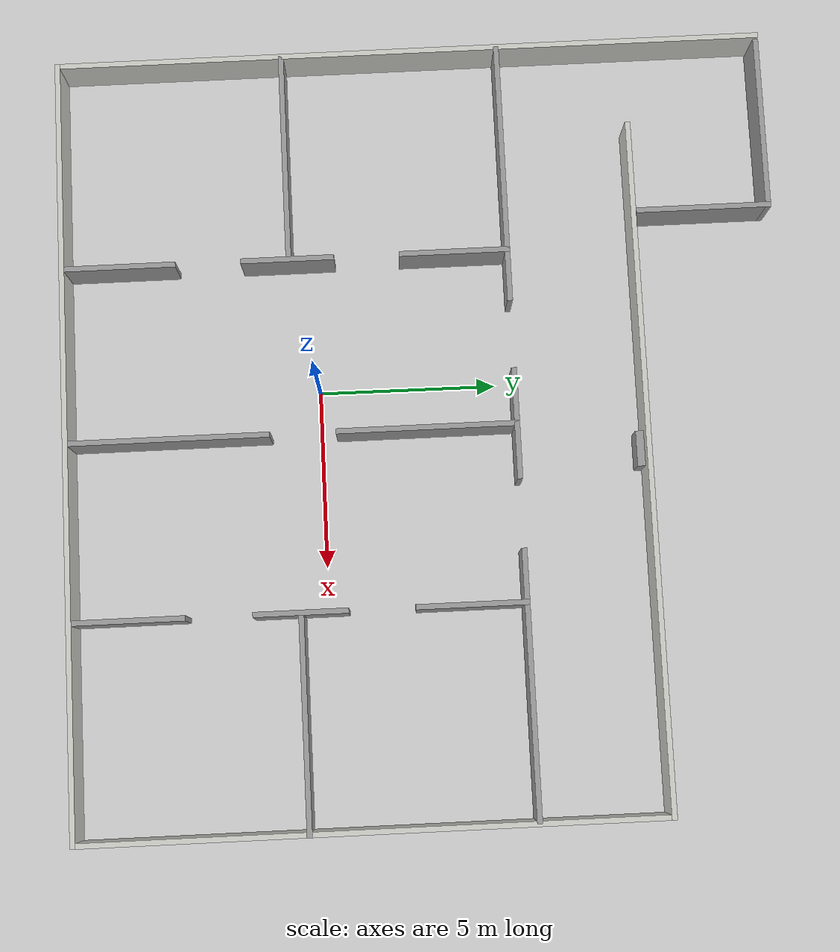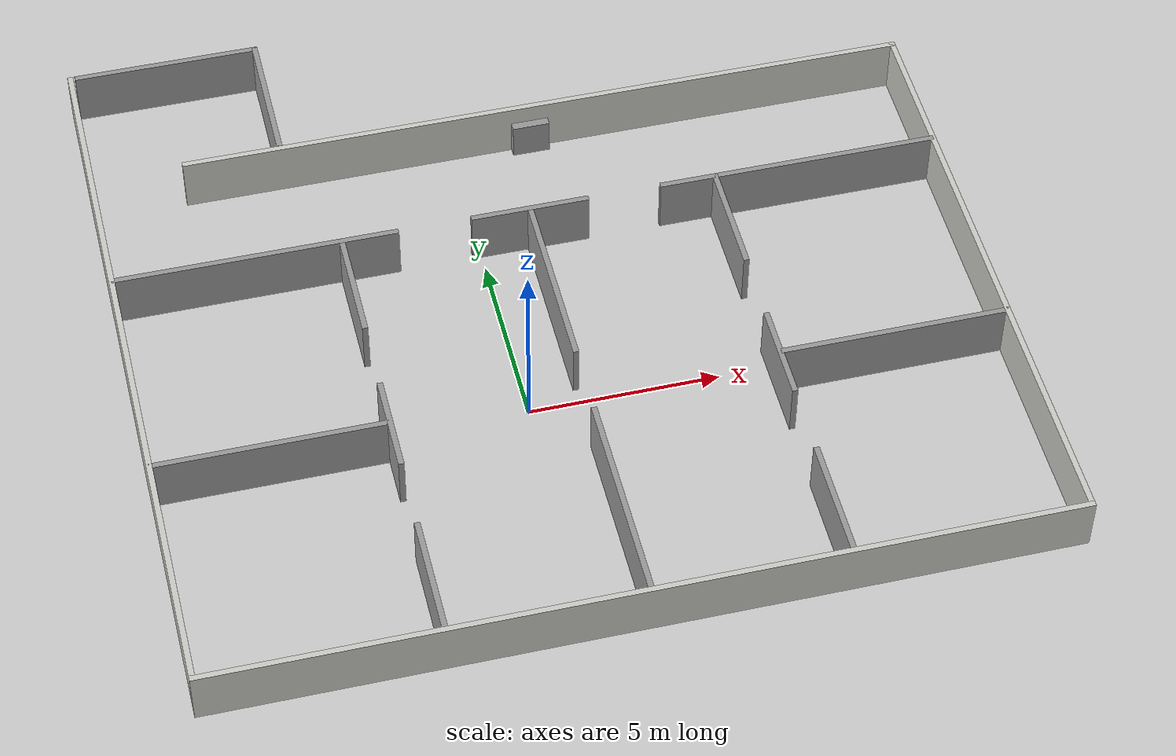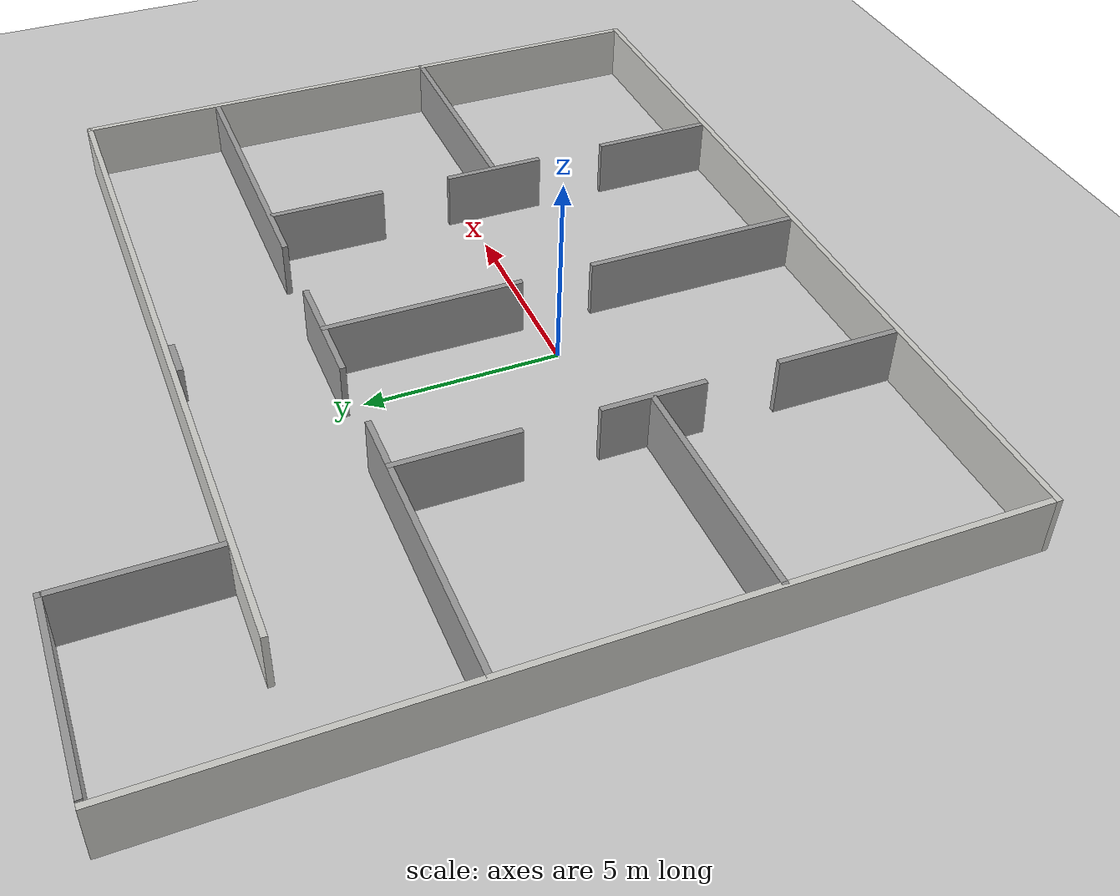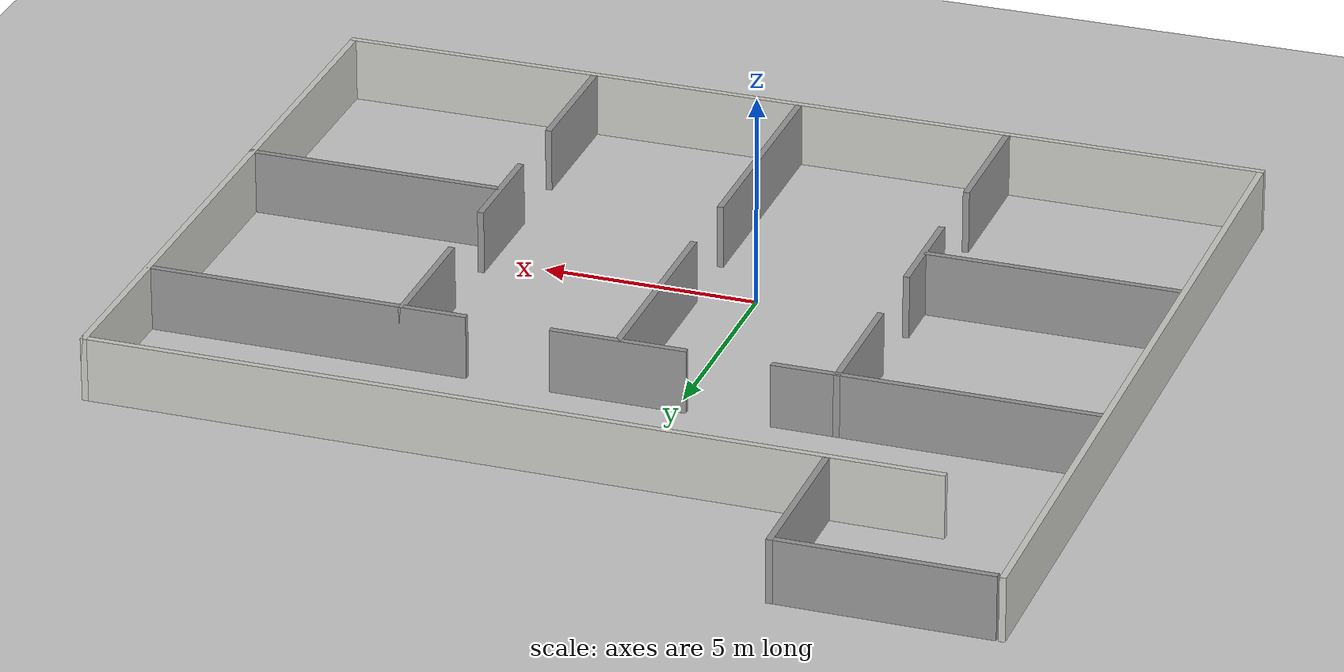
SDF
<sdf version="1.7">
 <world name="default">
  <model name="ground_plane">
   <static>1</static>
   <link name="link">
    <collision name="collision">
     <geometry><plane><normal>0 0 1</normal><size>100 100</size></plane></geometry>
     <surface>
      <contact><collide_bitmask>65535</collide_bitmask></contact>
      <friction><ode><mu>100</mu><mu2>50</mu2></ode></friction>
     </surface>
    </collision>
    <visual name="visual">
     <cast_shadows>0</cast_shadows>
     <geometry><plane><normal>0 0 1</normal><size>100 100</size></plane></geometry>
     <material>
      <script><uri>file://media/materials/scripts/gazebo.material</uri><name>Gazebo/Grey</name></script>
     </material>
    </visual>
   </link>
  </model>
  <model name="Untitled">
   <pose>1.32665 2.93009 0 0 -0 0</pose>
   <link name="Wall_0">
    <collision name="Wall_0_Collision">
     <geometry><box><size>20.15 0.15 1.5</size></box></geometry>
     <pose>0 0 0.75 0 -0 0</pose>
    </collision>
    <visual name="Wall_0_Visual">
     <pose>0 0 0.75 0 -0 0</pose>
     <geometry><box><size>20.15 0.15 1.5</size></box></geometry>
     <material>
      <script><uri>file://media/materials/scripts/gazebo.material</uri><name>Gazebo/CeilingTiled</name></script>
      <ambient>1 1 1 1</ambient>
     </material>
     <meta><layer>0</layer></meta>
    </visual>
    <pose>-11 0.074999 0 0 -0 1.5708</pose>
   </link>
   <link name="Wall_15">
    <collision name="Wall_15_Collision">
     <geometry><box><size>7.5 0.15 1.5</size></box></geometry>
     <pose>0 0 0.75 0 -0 0</pose>
    </collision>
    <visual name="Wall_15_Visual">
     <pose>0 0 0.75 0 -0 0</pose>
     <geometry><box><size>7.5 0.15 1.5</size></box></geometry>
     <material>
      <script><uri>file://media/materials/scripts/gazebo.material</uri><name>Gazebo/Grey</name></script>
      <ambient>1 1 1 1</ambient>
     </material>
     <meta><layer>0</layer></meta>
    </visual>
    <pose>7.259 2.575 0 0 -0 3.14159</pose>
   </link>
   <link name="Wall_18">
    <collision name="Wall_18_Collision">
     <geometry><box><size>3.15 0.15 1.5</size></box></geometry>
     <pose>0 0 0.75 0 -0 0</pose>
    </collision>
    <visual name="Wall_18_Visual">
     <pose>0 0 0.75 0 -0 0</pose>
     <geometry><box><size>3.15 0.15 1.5</size></box></geometry>
     <material>
      <script><uri>file://media/materials/scripts/gazebo.material</uri><name>Gazebo/Grey</name></script>
      <ambient>1 1 1 1</ambient>
     </material>
     <meta><layer>0</layer></meta>
    </visual>
    <pose>0 2.575 0 0 -0 0</pose>
   </link>
   <link name="Wall_2">
    <collision name="Wall_2_Collision">
     <geometry><box><size>16.3 0.15 1.5</size></box></geometry>
     <pose>0 0 0.75 0 -0 0</pose>
    </collision>
    <visual name="Wall_2_Visual">
     <pose>0 0 0.75 0 -0 0</pose>
     <geometry><box><size>16.3 0.15 1.5</size></box></geometry>
     <material>
      <script><uri>file://media/materials/scripts/gazebo.material</uri><name>Gazebo/CeilingTiled</name></script>
      <ambient>1 1 1 1</ambient>
     </material>
     <meta><layer>0</layer></meta>
    </visual>
    <pose>11 -1.85 0 0 -0 1.5708</pose>
   </link>
   <link name="Wall_21">
    <collision name="Wall_21_Collision">
     <geometry><box><size>3.15 0.15 1.5</size></box></geometry>
     <pose>0 0 0.75 0 -0 0</pose>
    </collision>
    <visual name="Wall_21_Visual">
     <pose>0 0 0.75 0 -0 0</pose>
     <geometry><box><size>3.15 0.15 1.5</size></box></geometry>
     <material>
      <script><uri>file://media/materials/scripts/gazebo.material</uri><name>Gazebo/Grey</name></script>
      <ambient>1 1 1 1</ambient>
     </material>
     <meta><layer>0</layer></meta>
    </visual>
    <pose>-5 1.075 0 0 -0 -1.5708</pose>
   </link>
   <link name="Wall_25">
    <collision name="Wall_25_Collision">
     <geometry><box><size>3.15 0.15 1.5</size></box></geometry>
     <pose>0 0 0.75 0 -0 0</pose>
    </collision>
    <visual name="Wall_25_Visual">
     <pose>0 0 0.75 0 -0 0</pose>
     <geometry><box><size>3.15 0.15 1.5</size></box></geometry>
     <material>
      <script><uri>file://media/materials/scripts/gazebo.material</uri><name>Gazebo/Grey</name></script>
      <ambient>1 1 1 1</ambient>
     </material>
     <meta><layer>0</layer></meta>
    </visual>
    <pose>-5 -8.425 0 0 -0 1.5708</pose>
   </link>
   <link name="Wall_27">
    <collision name="Wall_27_Collision">
     <geometry><box><size>2.65 0.15 1.5</size></box></geometry>
     <pose>0 0 0.75 0 -0 0</pose>
    </collision>
    <visual name="Wall_27_Visual">
     <pose>0 0 0.75 0 -0 0</pose>
     <geometry><box><size>2.65 0.15 1.5</size></box></geometry>
     <material>
      <script><uri>file://media/materials/scripts/gazebo.material</uri><name>Gazebo/Grey</name></script>
      <ambient>1 1 1 1</ambient>
     </material>
     <meta><layer>0</layer></meta>
    </visual>
    <pose>-5 -3.675 0 0 -0 -1.5708</pose>
   </link>
   <link name="Wall_29">
    <collision name="Wall_29_Collision">
     <geometry><box><size>6 0.15 1.5</size></box></geometry>
     <pose>0 0 0.75 0 -0 0</pose>
    </collision>
    <visual name="Wall_29_Visual">
     <pose>0 0 0.75 0 -0 0</pose>
     <geometry><box><size>6 0.15 1.5</size></box></geometry>
     <material>
      <script><uri>file://media/materials/scripts/gazebo.material</uri><name>Gazebo/Grey</name></script>
      <ambient>1 1 1 1</ambient>
     </material>
     <meta><layer>0</layer></meta>
    </visual>
    <pose>-8.017 -3.638 0 0 -0 3.14159</pose>
   </link>
   <link name="Wall_31">
    <collision name="Wall_31_Collision">
     <geometry><box><size>5.15 0.15 1.5</size></box></geometry>
     <pose>0 0 0.75 0 -0 0</pose>
    </collision>
    <visual name="Wall_31_Visual">
     <pose>0 0 0.75 0 -0 0</pose>
     <geometry><box><size>5.15 0.15 1.5</size></box></geometry>
     <material>
      <script><uri>file://media/materials/scripts/gazebo.material</uri><name>Gazebo/Grey</name></script>
      <ambient>1 1 1 1</ambient>
     </material>
     <meta><layer>0</layer></meta>
    </visual>
    <pose>0 0.074999 0 0 -0 -1.5708</pose>
   </link>
   <link name="Wall_33">
    <collision name="Wall_33_Collision">
     <geometry><box><size>5.65 0.15 1.5</size></box></geometry>
     <pose>0 0 0.75 0 -0 0</pose>
    </collision>
    <visual name="Wall_33_Visual">
     <pose>0 0 0.75 0 -0 0</pose>
     <geometry><box><size>5.65 0.15 1.5</size></box></geometry>
     <material>
      <script><uri>file://media/materials/scripts/gazebo.material</uri><name>Gazebo/Grey</name></script>
      <ambient>1 1 1 1</ambient>
     </material>
     <meta><layer>0</layer></meta>
    </visual>
    <pose>0 -7.175 0 0 -0 1.5708</pose>
   </link>
   <link name="Wall_35">
    <collision name="Wall_35_Collision">
     <geometry><box><size>3.15 0.15 1.5</size></box></geometry>
     <pose>0 0 0.75 0 -0 0</pose>
    </collision>
    <visual name="Wall_35_Visual">
     <pose>0 0 0.75 0 -0 0</pose>
     <geometry><box><size>3.15 0.15 1.5</size></box></geometry>
     <material>
      <script><uri>file://media/materials/scripts/gazebo.material</uri><name>Gazebo/Grey</name></script>
      <ambient>1 1 1 1</ambient>
     </material>
     <meta><layer>0</layer></meta>
    </visual>
    <pose>5 1.075 0 0 -0 -1.5708</pose>
   </link>
   <link name="Wall_37">
    <collision name="Wall_37_Collision">
     <geometry><box><size>2.65 0.15 1.5</size></box></geometry>
     <pose>0 0 0.75 0 -0 0</pose>
    </collision>
    <visual name="Wall_37_Visual">
     <pose>0 0 0.75 0 -0 0</pose>
     <geometry><box><size>2.65 0.15 1.5</size></box></geometry>
     <material>
      <script><uri>file://media/materials/scripts/gazebo.material</uri><name>Gazebo/Grey</name></script>
      <ambient>1 1 1 1</ambient>
     </material>
     <meta><layer>0</layer></meta>
    </visual>
    <pose>5 -3.675 0 0 -0 -1.5708</pose>
   </link>
   <link name="Wall_39">
    <collision name="Wall_39_Collision">
     <geometry><box><size>6.056 0.15 1.5</size></box></geometry>
     <pose>0 0 0.75 0 -0 0</pose>
    </collision>
    <visual name="Wall_39_Visual">
     <pose>0 0 0.75 0 -0 0</pose>
     <geometry><box><size>6.056 0.15 1.5</size></box></geometry>
     <material>
      <script><uri>file://media/materials/scripts/gazebo.material</uri><name>Gazebo/Grey</name></script>
      <ambient>1 1 1 1</ambient>
     </material>
     <meta><layer>0</layer></meta>
    </visual>
    <pose>8.047 -3.663 0 0 -0 0</pose>
   </link>
   <link name="Wall_4">
    <collision name="Wall_4_Collision">
     <geometry><box><size>19.65 0.15 1.5</size></box></geometry>
     <pose>0 0 0.75 0 -0 0</pose>
    </collision>
    <visual name="Wall_4_Visual">
     <pose>0 0 0.75 0 -0 0</pose>
     <geometry><box><size>19.65 0.15 1.5</size></box></geometry>
     <material>
      <script><uri>file://media/materials/scripts/gazebo.material</uri><name>Gazebo/CeilingTiled</name></script>
      <ambient>1 1 1 1</ambient>
     </material>
     <meta><layer>0</layer></meta>
    </visual>
    <pose>1.25 6.225 0 0 -0 0</pose>
   </link>
   <link name="Wall_42">
    <collision name="Wall_42_Collision">
     <geometry><box><size>3.15 0.15 1.5</size></box></geometry>
     <pose>0 0 0.75 0 -0 0</pose>
    </collision>
    <visual name="Wall_42_Visual">
     <pose>0 0 0.75 0 -0 0</pose>
     <geometry><box><size>3.15 0.15 1.5</size></box></geometry>
     <material>
      <script><uri>file://media/materials/scripts/gazebo.material</uri><name>Gazebo/Grey</name></script>
      <ambient>1 1 1 1</ambient>
     </material>
     <meta><layer>0</layer></meta>
    </visual>
    <pose>5 -8.425 0 0 -0 1.5708</pose>
   </link>
   <link name="Wall_45">
    <collision name="Wall_45_Collision">
     <geometry><box><size>3.841 0.15 1.5</size></box></geometry>
     <pose>0 0 0.75 0 -0 0</pose>
    </collision>
    <visual name="Wall_45_Visual">
     <pose>0 0 0.75 0 -0 0</pose>
     <geometry><box><size>3.841 0.15 1.5</size></box></geometry>
     <material>
      <script><uri>file://media/materials/scripts/gazebo.material</uri><name>Gazebo/Grey</name></script>
      <ambient>1 1 1 1</ambient>
     </material>
     <meta><layer>0</layer></meta>
    </visual>
    <pose>-5.955 8.2295 0 0 -0 1.5708</pose>
   </link>
   <link name="Wall_47">
    <collision name="Wall_47_Collision">
     <geometry><box><size>5 0.15 1.5</size></box></geometry>
     <pose>0 0 0.75 0 -0 0</pose>
    </collision>
    <visual name="Wall_47_Visual">
     <pose>0 0 0.75 0 -0 0</pose>
     <geometry><box><size>5 0.15 1.5</size></box></geometry>
     <material>
      <script><uri>file://media/materials/scripts/gazebo.material</uri><name>Gazebo/Grey</name></script>
      <ambient>1 1 1 1</ambient>
     </material>
     <meta><layer>0</layer></meta>
    </visual>
    <pose>-8.38 10.075 0 0 -0 3.14159</pose>
   </link>
   <link name="Wall_6">
    <collision name="Wall_6_Collision">
     <geometry><box><size>22.15 0.15 1.5</size></box></geometry>
     <pose>0 0 0.75 0 -0 0</pose>
    </collision>
    <visual name="Wall_6_Visual">
     <pose>0 0 0.75 0 -0 0</pose>
     <geometry><box><size>22.15 0.15 1.5</size></box></geometry>
     <material>
      <script><uri>file://media/materials/scripts/gazebo.material</uri><name>Gazebo/CeilingTiled</name></script>
      <ambient>1 1 1 1</ambient>
     </material>
     <meta><layer>0</layer></meta>
    </visual>
    <pose>0 -10.075 0 0 -0 0</pose>
   </link>
   <link name="Wall_8">
    <collision name="Wall_8_Collision">
     <geometry><box><size>7.5 0.15 1.5</size></box></geometry>
     <pose>0 0 0.75 0 -0 0</pose>
    </collision>
    <visual name="Wall_8_Visual">
     <pose>0 0 0.75 0 -0 0</pose>
     <geometry><box><size>7.5 0.15 1.5</size></box></geometry>
     <material>
      <script><uri>file://media/materials/scripts/gazebo.material</uri><name>Gazebo/Grey</name></script>
      <ambient>1 1 1 1</ambient>
     </material>
     <meta><layer>0</layer></meta>
    </visual>
    <pose>-7.253 2.575 0 0 -0 0</pose>
   </link>
   <static>1</static>
  </model>
  <model name="unit_box">
   <pose>2.14055 8.96807 0.5 1e-06 -1e-06 1e-06</pose>
   <link name="link">
    <inertial>
     <mass>1</mass>
     <inertia>
      <ixx>0.166667</ixx>
      <ixy>0</ixy>
      <ixz>0</ixz>
      <iyy>0.166667</iyy>
      <iyz>0</iyz>
      <izz>0.166667</izz>
     </inertia>
    </inertial>
    <collision name="collision"><geometry><box><size>1 0.224027 1</size></box></geometry></collision>
    <visual name="visual">
     <geometry><box><size>1 0.224027 1</size></box></geometry>
     <material>
      <script><name>Gazebo/Grey</name><uri>file://media/materials/scripts/gazebo.material</uri></script>
     </material>
    </visual>
   </link>
  </model>
 </world>
</sdf>
